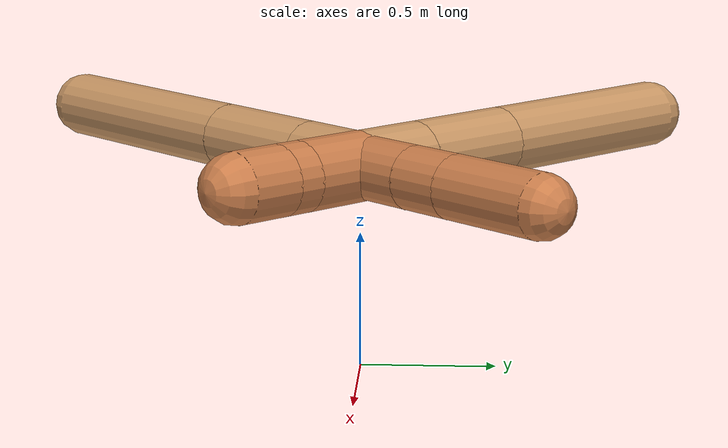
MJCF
<?xml version="1.0" ?>
<mujoco model="ant">

	<compiler angle="degree" coordinate="local" inertiafromgeom="true"/>

	<option integrator="RK4" timestep="0.01"/>

	<custom>

		<numeric data="0.0 0.0 0.55 1.0 0.0 0.0 0.0 0.0 1.0 0.0 -1.0 0.0 -1.0 0.0 1.0" name="init_qpos"/>

	</custom>

	<default>

		<joint armature="1" damping="1" limited="true"/>

		<geom conaffinity="0" condim="3" density="5.0" friction="1.5 0.1 0.1" margin="0.01" rgba="0.8 0.6 0.4 1"/>

	</default>

	<worldbody>

		<body name="torso" pos="0 0 0.75">

			<geom name="torso_geom" pos="0 0 0" size="0.08737952330183776" type="sphere"/>

			<!--joint armature="0" damping="0" limited="false" margin="0.01" name="root" pos="0 0 0" type="free"/-->

			<body name="front_left_leg" pos="0 0 0">

				<geom fromto="0 0 0 0.2 0.2 0" name="aux_1_geom" size="0.1181004739338886" type="capsule" rgba=".8 .5 .3 1"/>

				<body name="aux_1" pos="0.2 0.2 0">

					<joint axis="0 0 1" name="hip_1" pos="0.0 0.0 0.0" range="-40 40" type="hinge"/>

					<geom fromto="0 0 0 0.1469772155714911 0.1469772155714911 0" name="left_leg_geom" size="0.1181004739338886" type="capsule" rgba=".8 .5 .3 1"/>

					<body pos="0.1469772155714911 0.1469772155714911 0" name="front_left_foot">

						<joint axis="-1 1 0" name="ankle_1" pos="0.0 0.0 0.0" range="30 100" type="hinge"/>

						<geom fromto="0 0 0 0.2939544311429822 0.2939544311429822 0" name="left_ankle_geom" size="0.1181004739338886" type="capsule" rgba=".8 .5 .3 1"/>

					</body>

				</body>

			</body>

			<body name="front_right_leg" pos="0 0 0">

				<geom fromto="0 0 0 -0.2 0.2 0" name="aux_2_geom" size="0.12997773743907184" type="capsule"/>

				<body name="aux_2" pos="-0.2 0.2 0">

					<joint axis="0 0 1" name="hip_2" pos="0.0 0.0 0.0" range="-40 40" type="hinge"/>

					<geom fromto="0 0 0 -0.30438629086657276 0.30438629086657276 0" name="right_leg_geom" size="0.12997773743907184" type="capsule"/>

					<body pos="-0.30438629086657276 0.30438629086657276 0" name="front_right_foot">

						<joint axis="1 1 0" name="ankle_2" pos="0.0 0.0 0.0" range="-100 -30" type="hinge"/>

						<geom fromto="0 0 0 -0.6087725817331455 0.6087725817331455 0" name="right_ankle_geom" size="0.12997773743907184" type="capsule"/>

					</body>

				</body>

			</body>

			<body name="left_back_leg" pos="0 0 0">

				<geom fromto="0 0 0 -0.2 -0.2 0" name="aux_3_geom" size="0.12567011636708458" type="capsule"/>

				<body name="aux_3" pos="-0.2 -0.2 0">

					<joint axis="0 0 1" name="hip_3" pos="0.0 0.0 0.0" range="-40 40" type="hinge"/>

					<geom fromto="0 0 0 -0.3361547476637868 -0.3361547476637868 0" name="back_leg_geom" size="0.12567011636708458" type="capsule"/>

					<body pos="-0.3361547476637868 -0.3361547476637868 0" name="left_back_foot">

						<joint axis="-1 1 0" name="ankle_3" pos="0.0 0.0 0.0" range="-100 -30" type="hinge"/>

						<geom fromto="0 0 0 -0.6723094953275736 -0.6723094953275736 0" name="third_ankle_geom" size="0.12567011636708458" type="capsule"/>

					</body>

				</body>

			</body>

			<body name="right_back_leg" pos="0 0 0">

				<geom fromto="0 0 0 0.2 -0.2 0" name="aux_4_geom" size="0.13105473489401306" type="capsule" rgba=".8 .5 .3 1"/>

				<body name="aux_4" pos="0.2 -0.2 0">

					<joint axis="0 0 1" name="hip_4" pos="0.0 0.0 0.0" range="-40 40" type="hinge"/>

					<geom fromto="0 0 0 0.07066080377851836 -0.07066080377851836 0" name="rightback_leg_geom" size="0.13105473489401306" type="capsule" rgba=".8 .5 .3 1"/>

					<body pos="0.07066080377851836 -0.07066080377851836 0" name="right_back_foot">

						<joint axis="1 1 0" name="ankle_4" pos="0.0 0.0 0.0" range="30 100" type="hinge"/>

						<geom fromto="0 0 0 0.1413216075570367 -0.1413216075570367 0" name="fourth_ankle_geom" size="0.13105473489401306" type="capsule" rgba=".8 .5 .3 1"/>

					</body>

				</body>

			</body>

		</body>

	</worldbody>

	<actuator>

		<motor ctrllimited="true" ctrlrange="-1.0 1.0" joint="hip_4" gear="150"/>

		<motor ctrllimited="true" ctrlrange="-1.0 1.0" joint="ankle_4" gear="150"/>

		<motor ctrllimited="true" ctrlrange="-1.0 1.0" joint="hip_1" gear="150"/>

		<motor ctrllimited="true" ctrlrange="-1.0 1.0" joint="ankle_1" gear="150"/>

		<motor ctrllimited="true" ctrlrange="-1.0 1.0" joint="hip_2" gear="150"/>

		<motor ctrllimited="true" ctrlrange="-1.0 1.0" joint="ankle_2" gear="150"/>

		<motor ctrllimited="true" ctrlrange="-1.0 1.0" joint="hip_3" gear="150"/>

		<motor ctrllimited="true" ctrlrange="-1.0 1.0" joint="ankle_3" gear="150"/>

	</actuator>

</mujoco>
